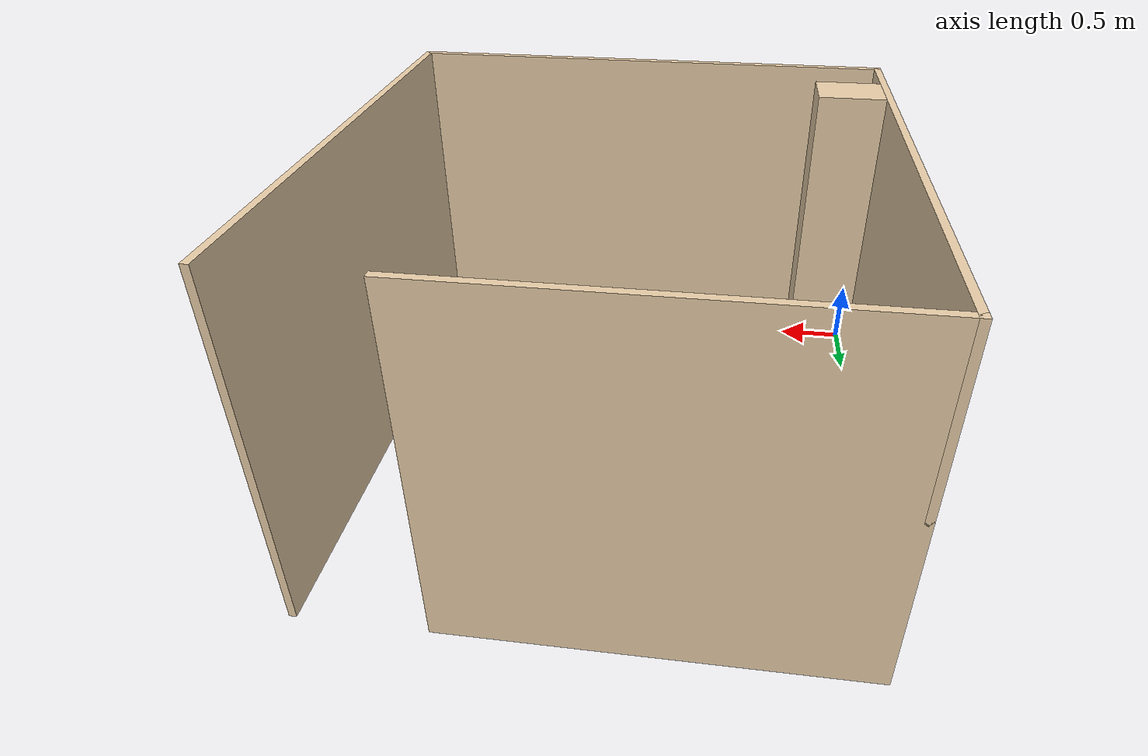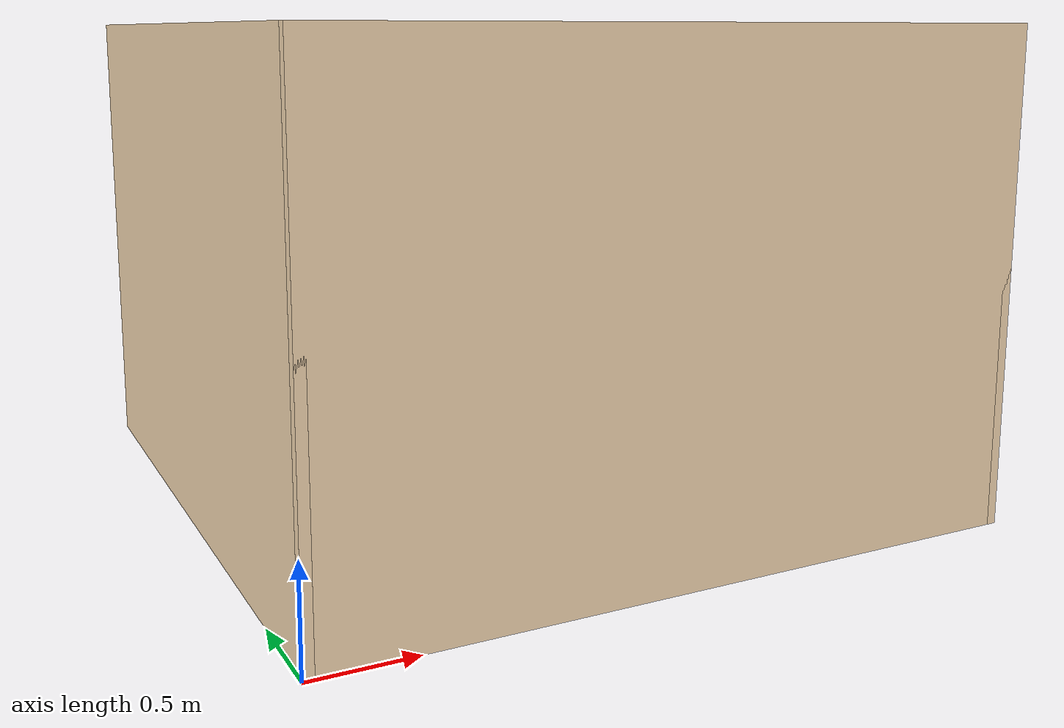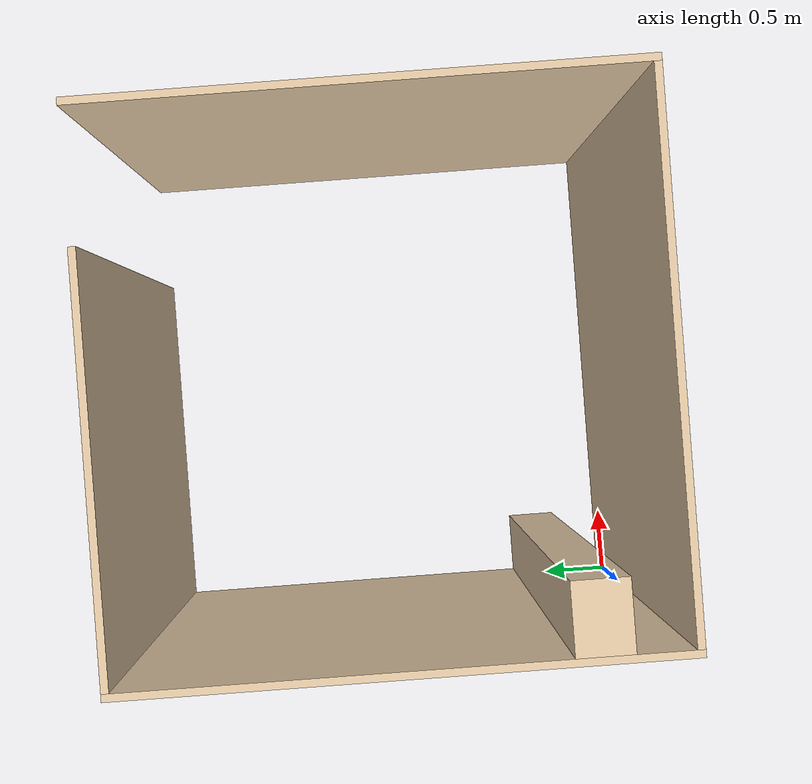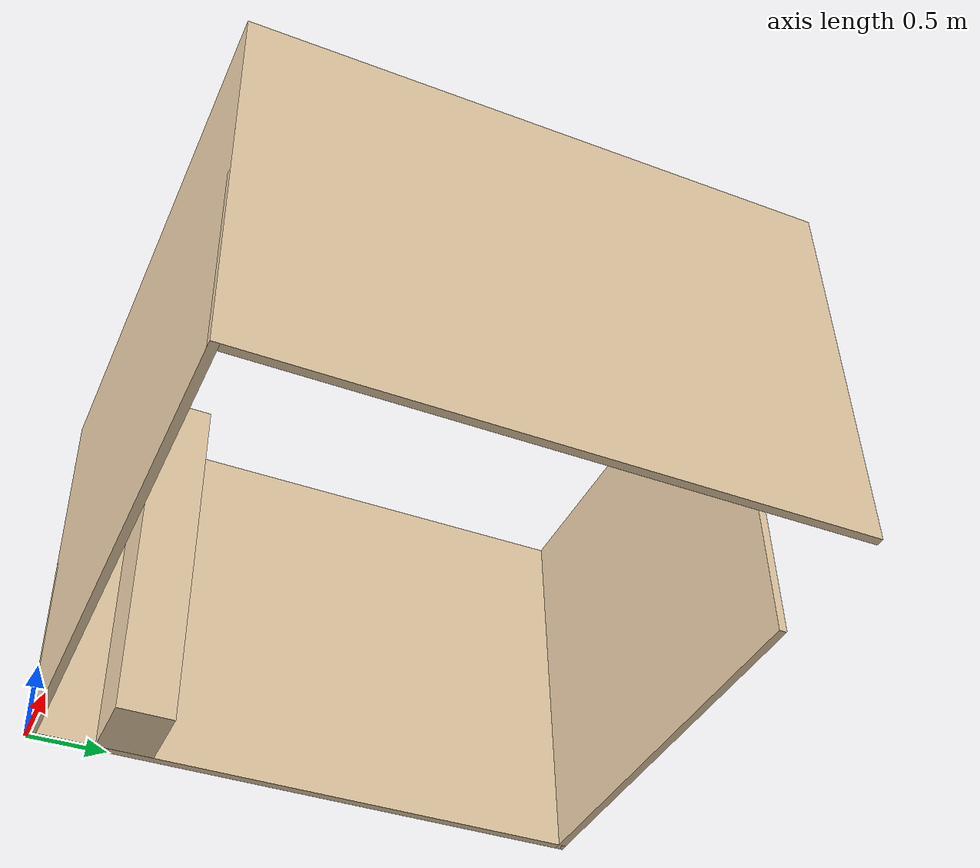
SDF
<?xml version="1.0"?>
<sdf version="1.7">

	<model name="Office1Walls">

		<static>true</static>
		<link name="office">
			<collision name="left_wall_collision">
				<pose>0.025 1.82 1.25 1.5708 0 1.5708</pose>
				<geometry>
					<box>
						<size>3.64 2.5 0.05</size>
					</box>
				</geometry>
			</collision>
			<visual name="left_wall_visual">
				<pose>0.025 1.82 1.25 1.5708 0 1.5708</pose>
				<geometry>
					<box>
						<size>3.64 2.5 0.05</size>
						</box>
				</geometry>
				<material>
					<script>
						<uri>file://media/materials/scripts/gazebo.material</uri>
						<name>Gazebo/Grey</name>
					</script>

					<ambient>1 1 1 1</ambient>
					<diffuse>0.9098 0.80392 0.65882 1</diffuse>
					<specular>0.02 0.02 0.02 1</specular>
					<emissive>0 0 0 1</emissive>
				</material>
			</visual>

			<collision name="front_wall_collision">
				<pose>1.37 3.615 1.25 1.5708 0 0</pose>
				<geometry>
					<box>
						<size>2.74 2.5 0.05</size>
					</box>
				</geometry>
			</collision>
			<visual name="front_wall_visual">
				<pose>1.37 3.615 1.25 1.5708 0 0</pose>
				<geometry>
					<box>
						<size>2.74 2.5 0.05</size>
					</box>
				</geometry>
				<material>
					<script>
						<uri>file://media/materials/scripts/gazebo.material</uri>
						<name>Gazebo/Grey</name>
					</script>

					<ambient>1 1 1 1</ambient>
					<diffuse>0.9098 0.80392 0.65882 1</diffuse>
					<specular>0.02 0.02 0.02 1</specular>
					<emissive>0 0 0 1</emissive>
				</material>
			</visual>

			<visual name="right_wall_visual">
				<pose>3.615 1.82 1.25 1.5708 0 1.5708</pose>
				<geometry>
					<box>
						<size>3.64 2.5 0.05</size>
					</box>
				</geometry>
				<material>
					<script>
						<uri>file://media/materials/scripts/gazebo.material</uri>
						<name>Gazebo/Grey</name>
					</script>

					<ambient>1 1 1 1</ambient>
					<diffuse>0.9098 0.80392 0.65882 1</diffuse>
					<specular>0.02 0.02 0.02 1</specular>
					<emissive>0 0 0 1</emissive>
				</material>
			</visual>

			<collision name="back_wall_collision">
				<pose>1.82 0.025 1.25 1.5708 0 0</pose>
				<geometry>
					<box>
						<size>3.64 2.5 0.05</size>
					</box>
				</geometry>
			</collision>
			<visual name="back_wall_visual">
				<pose>1.82 0.025 1.25 1.5708  0 0</pose>
				<geometry>
					<box>
						<size>3.64 2.5 0.05</size>
					</box>
				</geometry>
				<material>
					<script>
						<uri>file://media/materials/scripts/gazebo.material</uri>
						<name>Gazebo/Grey</name>
					</script>

					<ambient>1 1 1 1</ambient>
					<diffuse>0.9098 0.80392 0.65882 1</diffuse>
					<specular>0.02 0.02 0.02 1</specular>
					<emissive>0 0 0 1</emissive>
				</material>
			</visual>

			<collision name="column_collision">
				<pose> 0.285 0.6 1.25 0 0 0</pose>
				<geometry>
					<box>
						<size>0.47 0.37 2.5</size>
					</box>
				</geometry>
			</collision>
			<visual name="column_visual">
				<pose>0.285 0.6 1.25 0 0 0</pose>
				<geometry>
					<box>
						<size>0.47 0.37 2.5</size>
					</box>
				</geometry>
				<material>
					<script>
						<uri>file://media/materials/scripts/gazebo.material</uri>
						<name>Gazebo/Grey</name>
					</script>

					<ambient>1 1 1 1</ambient>
					<diffuse>0.9098 0.80392 0.65882 1</diffuse>
					<specular>0.02 0.02 0.02 1</specular>
					<emissive>0 0 0 1</emissive>
				</material>
			</visual>
		</link>
	</model>
</sdf>
